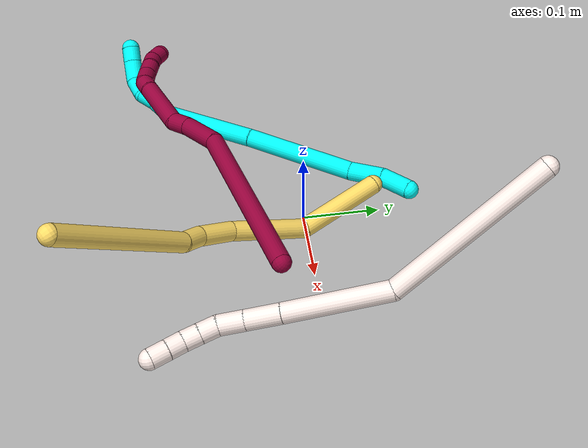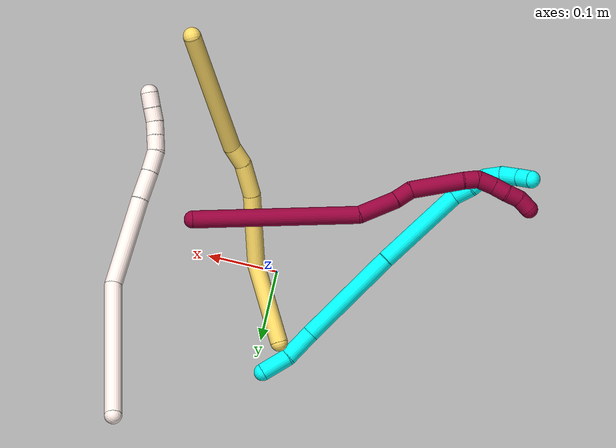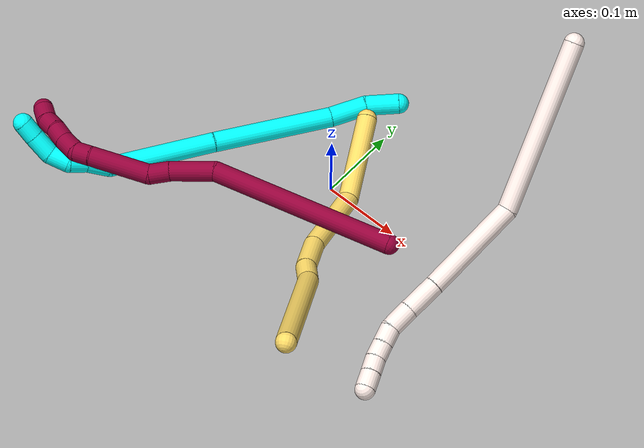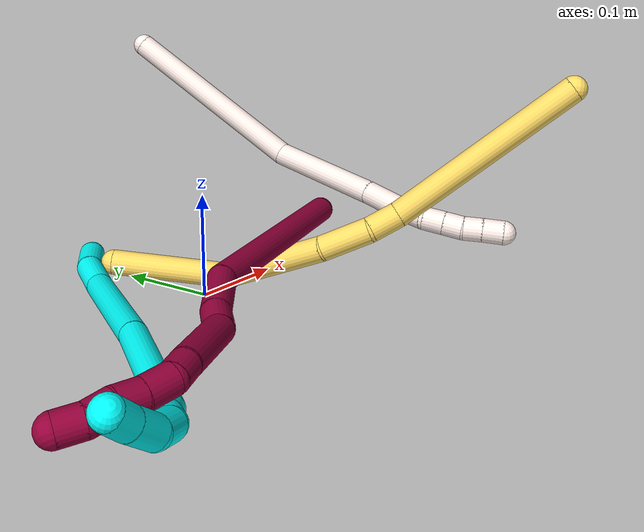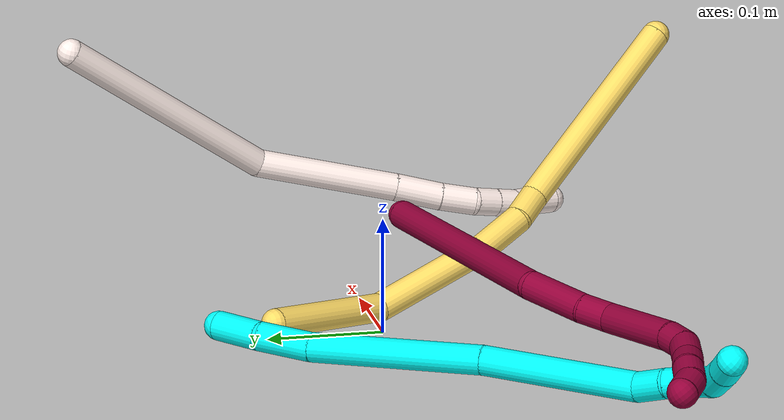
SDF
<sdf version="1.7">
 <world name="default">
  <model name="photoneo_s_sensor">
   <static>1</static>
   <pose>0 0 2 1.57079 1.57079 3.14159</pose>
   <link name="link">
    <inertial><mass>0.1</mass></inertial>
    <sensor name="sensor" type="depth">
     <update_rate>30</update_rate>
     <camera>
      <horizontal_fov>1.22</horizontal_fov>
      <image><width>1920</width><height>1200</height><format>B8G8R8</format></image>
      <clip><near>0.1</near><far>4</far></clip>
      <depth_camera><output>points</output></depth_camera>
     </camera>
     <plugin name="camera_plugin" filename="libgazebo_ros_depth_camera.so">
      <baseline>0.2</baseline>
      <alwaysOn>1</alwaysOn>
      <updateRate>0.0</updateRate>
      <cameraName>camera_ir</cameraName>
      <imageTopicName>/camera/color/image_raw</imageTopicName>
      <cameraInfoTopicName>/camera/color/camera_info</cameraInfoTopicName>
      <depthImageTopicName>/camera/depth/image_raw</depthImageTopicName>
      <depthImageCameraInfoTopicName>/camera/depth/camera_info</depthImageCameraInfoTopicName>
      <pointCloudTopicName>/camera/depth/points</pointCloudTopicName>
      <frameName>fr_optical</frameName>
      <pointCloudCutoff>0.1</pointCloudCutoff>
      <pointCloudCutoffMax>2.0</pointCloudCutoffMax>
      <distortionK1>0</distortionK1>
      <distortionK2>0</distortionK2>
      <distortionK3>0</distortionK3>
      <distortionT1>0</distortionT1>
      <distortionT2>0</distortionT2>
      <CxPrime>0</CxPrime>
      <Cx>0</Cx>
      <Cy>0</Cy>
      <focalLength>0</focalLength>
      <hackBaseline>0</hackBaseline>
     </plugin>
    </sensor>
   </link>
  </model>
  <model name="bin">
   <static>1</static>
   <link name="bottom">
    <collision name="collision-bottom">
     <pose>0 0 -0.01 0 -0 0</pose>
     <geometry><box><size>0.8 0.6 0.02</size></box></geometry>
     <surface>
      <friction><ode><mu>100</mu><mu2>100</mu2></ode></friction>
      <contact><collide_bitmask>65535</collide_bitmask></contact>
     </surface>
    </collision>
   </link>
   <link name="west_wall">
    <collision name="collision-west_wall">
     <pose>-0.41 0 0.1 0 -0 0</pose>
     <geometry><box><size>0.02 0.6 0.2</size></box></geometry>
     <surface>
      <friction><ode><mu>100</mu><mu2>100</mu2></ode></friction>
      <contact><collide_bitmask>65535</collide_bitmask></contact>
     </surface>
    </collision>
   </link>
   <link name="east_wall">
    <collision name="collision-east_wall">
     <pose>0.41 0 0.1 0 -0 0</pose>
     <geometry><box><size>0.02 0.6 0.2</size></box></geometry>
     <surface>
      <friction><ode><mu>100</mu><mu2>100</mu2></ode></friction>
      <contact><collide_bitmask>65535</collide_bitmask></contact>
     </surface>
    </collision>
   </link>
   <link name="south_wall">
    <collision name="collision-south_wall">
     <pose>0 -0.31 0.1 0 -0 0</pose>
     <geometry><box><size>0.8 0.02 0.2</size></box></geometry>
     <surface>
      <friction><ode><mu>100</mu><mu2>100</mu2></ode></friction>
      <contact><collide_bitmask>65535</collide_bitmask></contact>
     </surface>
    </collision>
   </link>
   <link name="north_wall">
    <collision name="collision-north_wall">
     <pose>0 0.31 0.1 0 -0 0</pose>
     <geometry><box><size>0.8 0.02 0.2</size></box></geometry>
     <surface>
      <friction><ode><mu>100</mu><mu2>100</mu2></ode></friction>
      <contact><collide_bitmask>65535</collide_bitmask></contact>
     </surface>
    </collision>
   </link>
  </model>
  <model name="3">
   <static>0</static>
   <link name="3">
    <collision name="collision-cylinder-e_1_1_4">
     <pose>-0.005639 -0.015014 -0.013395 2.29924 -0.27324 -0.595512</pose>
     <geometry><cylinder><radius>0.0125</radius><length>0.041792</length></cylinder></geometry>
     <surface>
      <friction><ode><mu>1.16</mu><mu2>1.16</mu2><slip1>0</slip1><slip2>0</slip2></ode></friction>
      <contact><ode><kp>1e+06</kp><kd>1</kd><max_vel>0</max_vel><min_depth>0.001</min_depth></ode></contact>
     </surface>
    </collision>
    <visual name="visual-cylinder-e_1_1_4">
     <pose>-0.005639 -0.015014 -0.013395 2.29924 -0.27324 -0.595512</pose>
     <geometry><cylinder><radius>0.0125</radius><length>0.041792</length></cylinder></geometry>
     <material><ambient>0.003922 1 0.996078 1</ambient></material>
    </visual>
    <collision name="collision-cylinder-e_2_4_5">
     <pose>-0.023193 -0.043996 -0.040884 2.36076 -0.540788 -1.18546</pose>
     <geometry><cylinder><radius>0.0125</radius><length>0.046291</length></cylinder></geometry>
     <surface>
      <friction><ode><mu>1.16</mu><mu2>1.16</mu2><slip1>0</slip1><slip2>0</slip2></ode></friction>
      <contact><ode><kp>1e+06</kp><kd>1</kd><max_vel>0</max_vel><min_depth>0.001</min_depth></ode></contact>
     </surface>
    </collision>
    <visual name="visual-cylinder-e_2_4_5">
     <pose>-0.023193 -0.043996 -0.040884 2.36076 -0.540788 -1.18546</pose>
     <geometry><cylinder><radius>0.0125</radius><length>0.046291</length></cylinder></geometry>
     <material><ambient>0.003922 1 0.996078 1</ambient></material>
    </visual>
    <collision name="collision-cylinder-e_3_5_6">
     <pose>-0.067783 -0.099012 -0.10911 2.49278 -0.448299 -1.19152</pose>
     <geometry><cylinder><radius>0.0125</radius><length>0.150769</length></cylinder></geometry>
     <surface>
      <friction><ode><mu>1.16</mu><mu2>1.16</mu2><slip1>0</slip1><slip2>0</slip2></ode></friction>
      <contact><ode><kp>1e+06</kp><kd>1</kd><max_vel>0</max_vel><min_depth>0.001</min_depth></ode></contact>
     </surface>
    </collision>
    <visual name="visual-cylinder-e_3_5_6">
     <pose>-0.067783 -0.099012 -0.10911 2.49278 -0.448299 -1.19152</pose>
     <geometry><cylinder><radius>0.0125</radius><length>0.150769</length></cylinder></geometry>
     <material><ambient>0.003922 1 0.996078 1</ambient></material>
    </visual>
    <collision name="collision-cylinder-e_4_6_7">
     <pose>-0.129838 -0.180692 -0.206826 2.39127 -0.458098 -1.06904</pose>
     <geometry><cylinder><radius>0.0125</radius><length>0.132872</length></cylinder></geometry>
     <surface>
      <friction><ode><mu>1.16</mu><mu2>1.16</mu2><slip1>0</slip1><slip2>0</slip2></ode></friction>
      <contact><ode><kp>1e+06</kp><kd>1</kd><max_vel>0</max_vel><min_depth>0.001</min_depth></ode></contact>
     </surface>
    </collision>
    <visual name="visual-cylinder-e_4_6_7">
     <pose>-0.129838 -0.180692 -0.206826 2.39127 -0.458098 -1.06904</pose>
     <geometry><cylinder><radius>0.0125</radius><length>0.132872</length></cylinder></geometry>
     <material><ambient>0.003922 1 0.996078 1</ambient></material>
    </visual>
    <collision name="collision-cylinder-e_5_7_8">
     <pose>-0.159966 -0.228877 -0.262617 2.58733 -0.052003 -0.182352</pose>
     <geometry><cylinder><radius>0.0125</radius><length>0.028747</length></cylinder></geometry>
     <surface>
      <friction><ode><mu>1.16</mu><mu2>1.16</mu2><slip1>0</slip1><slip2>0</slip2></ode></friction>
      <contact><ode><kp>1e+06</kp><kd>1</kd><max_vel>0</max_vel><min_depth>0.001</min_depth></ode></contact>
     </surface>
    </collision>
    <visual name="visual-cylinder-e_5_7_8">
     <pose>-0.159966 -0.228877 -0.262617 2.58733 -0.052003 -0.182352</pose>
     <geometry><cylinder><radius>0.0125</radius><length>0.028747</length></cylinder></geometry>
     <material><ambient>0.003922 1 0.996078 1</ambient></material>
    </visual>
    <collision name="collision-cylinder-e_6_8_9">
     <pose>-0.163789 -0.242204 -0.284397 2.59909 -0.268443 -0.90403</pose>
     <geometry><cylinder><radius>0.0125</radius><length>0.02319</length></cylinder></geometry>
     <surface>
      <friction><ode><mu>1.16</mu><mu2>1.16</mu2><slip1>0</slip1><slip2>0</slip2></ode></friction>
      <contact><ode><kp>1e+06</kp><kd>1</kd><max_vel>0</max_vel><min_depth>0.001</min_depth></ode></contact>
     </surface>
    </collision>
    <visual name="visual-cylinder-e_6_8_9">
     <pose>-0.163789 -0.242204 -0.284397 2.59909 -0.268443 -0.90403</pose>
     <geometry><cylinder><radius>0.0125</radius><length>0.02319</length></cylinder></geometry>
     <material><ambient>0.003922 1 0.996078 1</ambient></material>
    </visual>
    <collision name="collision-cylinder-e_7_9_10">
     <pose>-0.16419 -0.256514 -0.303298 2.40034 0.208361 0.525702</pose>
     <geometry><cylinder><radius>0.0125</radius><length>0.025849</length></cylinder></geometry>
     <surface>
      <friction><ode><mu>1.16</mu><mu2>1.16</mu2><slip1>0</slip1><slip2>0</slip2></ode></friction>
      <contact><ode><kp>1e+06</kp><kd>1</kd><max_vel>0</max_vel><min_depth>0.001</min_depth></ode></contact>
     </surface>
    </collision>
    <visual name="visual-cylinder-e_7_9_10">
     <pose>-0.16419 -0.256514 -0.303298 2.40034 0.208361 0.525702</pose>
     <geometry><cylinder><radius>0.0125</radius><length>0.025849</length></cylinder></geometry>
     <material><ambient>0.003922 1 0.996078 1</ambient></material>
    </visual>
    <collision name="collision-cylinder-e_8_10_11">
     <pose>-0.153577 -0.270517 -0.323556 2.67797 0.576177 1.79628</pose>
     <geometry><cylinder><radius>0.0125</radius><length>0.029146</length></cylinder></geometry>
     <surface>
      <friction><ode><mu>1.16</mu><mu2>1.16</mu2><slip1>0</slip1><slip2>0</slip2></ode></friction>
      <contact><ode><kp>1e+06</kp><kd>1</kd><max_vel>0</max_vel><min_depth>0.001</min_depth></ode></contact>
     </surface>
    </collision>
    <visual name="visual-cylinder-e_8_10_11">
     <pose>-0.153577 -0.270517 -0.323556 2.67797 0.576177 1.79628</pose>
     <geometry><cylinder><radius>0.0125</radius><length>0.029146</length></cylinder></geometry>
     <material><ambient>0.003922 1 0.996078 1</ambient></material>
    </visual>
    <collision name="collision-cylinder-e_9_11_2">
     <pose>-0.139554 -0.279168 -0.342655 2.76973 0.606549 2.05912</pose>
     <geometry><cylinder><radius>0.0125</radius><length>0.021343</length></cylinder></geometry>
     <surface>
      <friction><ode><mu>1.16</mu><mu2>1.16</mu2><slip1>0</slip1><slip2>0</slip2></ode></friction>
      <contact><ode><kp>1e+06</kp><kd>1</kd><max_vel>0</max_vel><min_depth>0.001</min_depth></ode></contact>
     </surface>
    </collision>
    <visual name="visual-cylinder-e_9_11_2">
     <pose>-0.139554 -0.279168 -0.342655 2.76973 0.606549 2.05912</pose>
     <geometry><cylinder><radius>0.0125</radius><length>0.021343</length></cylinder></geometry>
     <material><ambient>0.003922 1 0.996078 1</ambient></material>
    </visual>
    <collision name="collision-sphere-2">
     <pose>-0.133471 -0.282353 -0.350823 0 -0 0</pose>
     <geometry><sphere><radius>0.0125</radius></sphere></geometry>
     <surface>
      <friction><ode><mu>1.16</mu><mu2>1.16</mu2><slip1>0</slip1><slip2>0</slip2></ode></friction>
      <contact><ode><kp>1e+06</kp><kd>1</kd><max_vel>0</max_vel><min_depth>0.001</min_depth></ode></contact>
     </surface>
    </collision>
    <visual name="visual-sphere-2">
     <pose>-0.133471 -0.282353 -0.350823 0 -0 0</pose>
     <geometry><sphere><radius>0.0125</radius></sphere></geometry>
     <material><ambient>0.003922 1 0.996078 1</ambient></material>
    </visual>
    <collision name="collision-sphere-11">
     <pose>-0.145638 -0.275982 -0.334486 0 -0 0</pose>
     <geometry><sphere><radius>0.0125</radius></sphere></geometry>
     <surface>
      <friction><ode><mu>1.16</mu><mu2>1.16</mu2><slip1>0</slip1><slip2>0</slip2></ode></friction>
      <contact><ode><kp>1e+06</kp><kd>1</kd><max_vel>0</max_vel><min_depth>0.001</min_depth></ode></contact>
     </surface>
    </collision>
    <visual name="visual-sphere-11">
     <pose>-0.145638 -0.275982 -0.334486 0 -0 0</pose>
     <geometry><sphere><radius>0.0125</radius></sphere></geometry>
     <material><ambient>0.003922 1 0.996078 1</ambient></material>
    </visual>
    <collision name="collision-sphere-10">
     <pose>-0.161517 -0.265052 -0.312626 0 -0 0</pose>
     <geometry><sphere><radius>0.0125</radius></sphere></geometry>
     <surface>
      <friction><ode><mu>1.16</mu><mu2>1.16</mu2><slip1>0</slip1><slip2>0</slip2></ode></friction>
      <contact><ode><kp>1e+06</kp><kd>1</kd><max_vel>0</max_vel><min_depth>0.001</min_depth></ode></contact>
     </surface>
    </collision>
    <visual name="visual-sphere-10">
     <pose>-0.161517 -0.265052 -0.312626 0 -0 0</pose>
     <geometry><sphere><radius>0.0125</radius></sphere></geometry>
     <material><ambient>0.003922 1 0.996078 1</ambient></material>
    </visual>
    <collision name="collision-sphere-9">
     <pose>-0.166864 -0.247976 -0.293971 0 -0 0</pose>
     <geometry><sphere><radius>0.0125</radius></sphere></geometry>
     <surface>
      <friction><ode><mu>1.16</mu><mu2>1.16</mu2><slip1>0</slip1><slip2>0</slip2></ode></friction>
      <contact><ode><kp>1e+06</kp><kd>1</kd><max_vel>0</max_vel><min_depth>0.001</min_depth></ode></contact>
     </surface>
    </collision>
    <visual name="visual-sphere-9">
     <pose>-0.166864 -0.247976 -0.293971 0 -0 0</pose>
     <geometry><sphere><radius>0.0125</radius></sphere></geometry>
     <material><ambient>0.003922 1 0.996078 1</ambient></material>
    </visual>
    <collision name="collision-sphere-4">
     <pose>-0.011278 -0.030029 -0.026789 0 -0 0</pose>
     <geometry><sphere><radius>0.0125</radius></sphere></geometry>
     <surface>
      <friction><ode><mu>1.16</mu><mu2>1.16</mu2><slip1>0</slip1><slip2>0</slip2></ode></friction>
      <contact><ode><kp>1e+06</kp><kd>1</kd><max_vel>0</max_vel><min_depth>0.001</min_depth></ode></contact>
     </surface>
    </collision>
    <visual name="visual-sphere-4">
     <pose>-0.011278 -0.030029 -0.026789 0 -0 0</pose>
     <geometry><sphere><radius>0.0125</radius></sphere></geometry>
     <material><ambient>0.003922 1 0.996078 1</ambient></material>
    </visual>
    <collision name="collision-sphere-1">
     <geometry><sphere><radius>0.0125</radius></sphere></geometry>
     <surface>
      <friction><ode><mu>1.16</mu><mu2>1.16</mu2><slip1>0</slip1><slip2>0</slip2></ode></friction>
      <contact><ode><kp>1e+06</kp><kd>1</kd><max_vel>0</max_vel><min_depth>0.001</min_depth></ode></contact>
     </surface>
    </collision>
    <visual name="visual-sphere-1">
     <geometry><sphere><radius>0.0125</radius></sphere></geometry>
     <material><ambient>0.003922 1 0.996078 1</ambient></material>
    </visual>
    <collision name="collision-sphere-8">
     <pose>-0.160713 -0.236432 -0.274822 0 -0 0</pose>
     <geometry><sphere><radius>0.0125</radius></sphere></geometry>
     <surface>
      <friction><ode><mu>1.16</mu><mu2>1.16</mu2><slip1>0</slip1><slip2>0</slip2></ode></friction>
      <contact><ode><kp>1e+06</kp><kd>1</kd><max_vel>0</max_vel><min_depth>0.001</min_depth></ode></contact>
     </surface>
    </collision>
    <visual name="visual-sphere-8">
     <pose>-0.160713 -0.236432 -0.274822 0 -0 0</pose>
     <geometry><sphere><radius>0.0125</radius></sphere></geometry>
     <material><ambient>0.003922 1 0.996078 1</ambient></material>
    </visual>
    <collision name="collision-sphere-5">
     <pose>-0.035109 -0.057962 -0.054979 0 -0 0</pose>
     <geometry><sphere><radius>0.0125</radius></sphere></geometry>
     <surface>
      <friction><ode><mu>1.16</mu><mu2>1.16</mu2><slip1>0</slip1><slip2>0</slip2></ode></friction>
      <contact><ode><kp>1e+06</kp><kd>1</kd><max_vel>0</max_vel><min_depth>0.001</min_depth></ode></contact>
     </surface>
    </collision>
    <visual name="visual-sphere-5">
     <pose>-0.035109 -0.057962 -0.054979 0 -0 0</pose>
     <geometry><sphere><radius>0.0125</radius></sphere></geometry>
     <material><ambient>0.003922 1 0.996078 1</ambient></material>
    </visual>
    <collision name="collision-sphere-6">
     <pose>-0.100457 -0.140062 -0.163241 0 -0 0</pose>
     <geometry><sphere><radius>0.0125</radius></sphere></geometry>
     <surface>
      <friction><ode><mu>1.16</mu><mu2>1.16</mu2><slip1>0</slip1><slip2>0</slip2></ode></friction>
      <contact><ode><kp>1e+06</kp><kd>1</kd><max_vel>0</max_vel><min_depth>0.001</min_depth></ode></contact>
     </surface>
    </collision>
    <visual name="visual-sphere-6">
     <pose>-0.100457 -0.140062 -0.163241 0 -0 0</pose>
     <geometry><sphere><radius>0.0125</radius></sphere></geometry>
     <material><ambient>0.003922 1 0.996078 1</ambient></material>
    </visual>
    <collision name="collision-sphere-7">
     <pose>-0.159219 -0.221322 -0.250411 0 -0 0</pose>
     <geometry><sphere><radius>0.0125</radius></sphere></geometry>
     <surface>
      <friction><ode><mu>1.16</mu><mu2>1.16</mu2><slip1>0</slip1><slip2>0</slip2></ode></friction>
      <contact><ode><kp>1e+06</kp><kd>1</kd><max_vel>0</max_vel><min_depth>0.001</min_depth></ode></contact>
     </surface>
    </collision>
    <visual name="visual-sphere-7">
     <pose>-0.159219 -0.221322 -0.250411 0 -0 0</pose>
     <geometry><sphere><radius>0.0125</radius></sphere></geometry>
     <material><ambient>0.003922 1 0.996078 1</ambient></material>
    </visual>
    <inertial>
     <pose>-0.097753 -0.148541 -0.170225 0 -0 0</pose>
     <mass>0.5</mass>
     <inertia>
      <ixx>-0.000223</ixx>
      <ixy>0</ixy>
      <ixz>0</ixz>
      <iyy>-0.000471</iyy>
      <iyz>0</iyz>
      <izz>0.000491</izz>
     </inertia>
    </inertial>
   </link>
   <pose>-0.012777 0.1433 0.019303 2.49547 -0.435866 2.05597</pose>
  </model>
  <model name="5">
   <static>0</static>
   <link name="5">
    <collision name="collision-cylinder-e_1_1_4">
     <pose>-0.001497 -0.002715 0.057844 0.04691 -0.025854 -0.000607</pose>
     <geometry><cylinder><radius>0.0125</radius><length>0.115854</length></cylinder></geometry>
     <surface>
      <friction><ode><mu>1.16</mu><mu2>1.16</mu2><slip1>0</slip1><slip2>0</slip2></ode></friction>
      <contact><ode><kp>1e+06</kp><kd>1</kd><max_vel>0</max_vel><min_depth>0.001</min_depth></ode></contact>
     </surface>
    </collision>
    <visual name="visual-cylinder-e_1_1_4">
     <pose>-0.001497 -0.002715 0.057844 0.04691 -0.025854 -0.000607</pose>
     <geometry><cylinder><radius>0.0125</radius><length>0.115854</length></cylinder></geometry>
     <material><ambient>1 0.858824 0.4 1</ambient></material>
    </visual>
    <collision name="collision-cylinder-e_2_4_5">
     <pose>-0.000279 -0.032917 0.161 0.545257 0.051204 0.014319</pose>
     <geometry><cylinder><radius>0.0125</radius><length>0.106134</length></cylinder></geometry>
     <surface>
      <friction><ode><mu>1.16</mu><mu2>1.16</mu2><slip1>0</slip1><slip2>0</slip2></ode></friction>
      <contact><ode><kp>1e+06</kp><kd>1</kd><max_vel>0</max_vel><min_depth>0.001</min_depth></ode></contact>
     </surface>
    </collision>
    <visual name="visual-cylinder-e_2_4_5">
     <pose>-0.000279 -0.032917 0.161 0.545257 0.051204 0.014319</pose>
     <geometry><cylinder><radius>0.0125</radius><length>0.106134</length></cylinder></geometry>
     <material><ambient>1 0.858824 0.4 1</ambient></material>
    </visual>
    <collision name="collision-cylinder-e_3_5_6">
     <pose>-0.001524 -0.072688 0.227249 0.530608 -0.161783 -0.044047</pose>
     <geometry><cylinder><radius>0.0125</radius><length>0.04919</length></cylinder></geometry>
     <surface>
      <friction><ode><mu>1.16</mu><mu2>1.16</mu2><slip1>0</slip1><slip2>0</slip2></ode></friction>
      <contact><ode><kp>1e+06</kp><kd>1</kd><max_vel>0</max_vel><min_depth>0.001</min_depth></ode></contact>
     </surface>
    </collision>
    <visual name="visual-cylinder-e_3_5_6">
     <pose>-0.001524 -0.072688 0.227249 0.530608 -0.161783 -0.044047</pose>
     <geometry><cylinder><radius>0.0125</radius><length>0.04919</length></cylinder></geometry>
     <material><ambient>1 0.858824 0.4 1</ambient></material>
    </visual>
    <collision name="collision-cylinder-e_4_6_7">
     <pose>-0.012054 -0.091844 0.26023 0.518486 -0.442344 -0.119125</pose>
     <geometry><cylinder><radius>0.0125</radius><length>0.030688</length></cylinder></geometry>
     <surface>
      <friction><ode><mu>1.16</mu><mu2>1.16</mu2><slip1>0</slip1><slip2>0</slip2></ode></friction>
      <contact><ode><kp>1e+06</kp><kd>1</kd><max_vel>0</max_vel><min_depth>0.001</min_depth></ode></contact>
     </surface>
    </collision>
    <visual name="visual-cylinder-e_4_6_7">
     <pose>-0.012054 -0.091844 0.26023 0.518486 -0.442344 -0.119125</pose>
     <geometry><cylinder><radius>0.0125</radius><length>0.030688</length></cylinder></geometry>
     <material><ambient>1 0.858824 0.4 1</ambient></material>
    </visual>
    <collision name="collision-cylinder-e_5_7_2">
     <pose>-0.044348 -0.164646 0.341598 0.760313 -0.262686 -0.105478</pose>
     <geometry><cylinder><radius>0.0125</radius><length>0.198134</length></cylinder></geometry>
     <surface>
      <friction><ode><mu>1.16</mu><mu2>1.16</mu2><slip1>0</slip1><slip2>0</slip2></ode></friction>
      <contact><ode><kp>1e+06</kp><kd>1</kd><max_vel>0</max_vel><min_depth>0.001</min_depth></ode></contact>
     </surface>
    </collision>
    <visual name="visual-cylinder-e_5_7_2">
     <pose>-0.044348 -0.164646 0.341598 0.760313 -0.262686 -0.105478</pose>
     <geometry><cylinder><radius>0.0125</radius><length>0.198134</length></cylinder></geometry>
     <material><ambient>1 0.858824 0.4 1</ambient></material>
    </visual>
    <collision name="collision-sphere-2">
     <pose>-0.070073 -0.230576 0.410921 0 -0 0</pose>
     <geometry><sphere><radius>0.0125</radius></sphere></geometry>
     <surface>
      <friction><ode><mu>1.16</mu><mu2>1.16</mu2><slip1>0</slip1><slip2>0</slip2></ode></friction>
      <contact><ode><kp>1e+06</kp><kd>1</kd><max_vel>0</max_vel><min_depth>0.001</min_depth></ode></contact>
     </surface>
    </collision>
    <visual name="visual-sphere-2">
     <pose>-0.070073 -0.230576 0.410921 0 -0 0</pose>
     <geometry><sphere><radius>0.0125</radius></sphere></geometry>
     <material><ambient>1 0.858824 0.4 1</ambient></material>
    </visual>
    <collision name="collision-sphere-7">
     <pose>-0.018623 -0.098716 0.272274 0 -0 0</pose>
     <geometry><sphere><radius>0.0125</radius></sphere></geometry>
     <surface>
      <friction><ode><mu>1.16</mu><mu2>1.16</mu2><slip1>0</slip1><slip2>0</slip2></ode></friction>
      <contact><ode><kp>1e+06</kp><kd>1</kd><max_vel>0</max_vel><min_depth>0.001</min_depth></ode></contact>
     </surface>
    </collision>
    <visual name="visual-sphere-7">
     <pose>-0.018623 -0.098716 0.272274 0 -0 0</pose>
     <geometry><sphere><radius>0.0125</radius></sphere></geometry>
     <material><ambient>1 0.858824 0.4 1</ambient></material>
    </visual>
    <collision name="collision-sphere-6">
     <pose>-0.005486 -0.084972 0.248185 0 -0 0</pose>
     <geometry><sphere><radius>0.0125</radius></sphere></geometry>
     <surface>
      <friction><ode><mu>1.16</mu><mu2>1.16</mu2><slip1>0</slip1><slip2>0</slip2></ode></friction>
      <contact><ode><kp>1e+06</kp><kd>1</kd><max_vel>0</max_vel><min_depth>0.001</min_depth></ode></contact>
     </surface>
    </collision>
    <visual name="visual-sphere-6">
     <pose>-0.005486 -0.084972 0.248185 0 -0 0</pose>
     <geometry><sphere><radius>0.0125</radius></sphere></geometry>
     <material><ambient>1 0.858824 0.4 1</ambient></material>
    </visual>
    <collision name="collision-sphere-5">
     <pose>0.002437 -0.060404 0.206313 0 -0 0</pose>
     <geometry><sphere><radius>0.0125</radius></sphere></geometry>
     <surface>
      <friction><ode><mu>1.16</mu><mu2>1.16</mu2><slip1>0</slip1><slip2>0</slip2></ode></friction>
      <contact><ode><kp>1e+06</kp><kd>1</kd><max_vel>0</max_vel><min_depth>0.001</min_depth></ode></contact>
     </surface>
    </collision>
    <visual name="visual-sphere-5">
     <pose>0.002437 -0.060404 0.206313 0 -0 0</pose>
     <geometry><sphere><radius>0.0125</radius></sphere></geometry>
     <material><ambient>1 0.858824 0.4 1</ambient></material>
    </visual>
    <collision name="collision-sphere-1">
     <geometry><sphere><radius>0.0125</radius></sphere></geometry>
     <surface>
      <friction><ode><mu>1.16</mu><mu2>1.16</mu2><slip1>0</slip1><slip2>0</slip2></ode></friction>
      <contact><ode><kp>1e+06</kp><kd>1</kd><max_vel>0</max_vel><min_depth>0.001</min_depth></ode></contact>
     </surface>
    </collision>
    <visual name="visual-sphere-1">
     <geometry><sphere><radius>0.0125</radius></sphere></geometry>
     <material><ambient>1 0.858824 0.4 1</ambient></material>
    </visual>
    <collision name="collision-sphere-4">
     <pose>-0.002995 -0.005431 0.115687 0 -0 0</pose>
     <geometry><sphere><radius>0.0125</radius></sphere></geometry>
     <surface>
      <friction><ode><mu>1.16</mu><mu2>1.16</mu2><slip1>0</slip1><slip2>0</slip2></ode></friction>
      <contact><ode><kp>1e+06</kp><kd>1</kd><max_vel>0</max_vel><min_depth>0.001</min_depth></ode></contact>
     </surface>
    </collision>
    <visual name="visual-sphere-4">
     <pose>-0.002995 -0.005431 0.115687 0 -0 0</pose>
     <geometry><sphere><radius>0.0125</radius></sphere></geometry>
     <material><ambient>1 0.858824 0.4 1</ambient></material>
    </visual>
    <inertial>
     <pose>-0.01887 -0.085649 0.221271 0 -0 0</pose>
     <mass>0.5</mass>
     <inertia>
      <ixx>0.000811</ixx>
      <ixy>0</ixy>
      <ixz>0</ixz>
      <iyy>0.000637</iyy>
      <iyz>0</iyz>
      <izz>0.000708</izz>
     </inertia>
    </inertial>
   </link>
   <pose>-0.025899 0.097054 0.022471 -1.71563 0.301279 -2.68114</pose>
  </model>
  <model name="8">
   <static>0</static>
   <link name="8">
    <collision name="collision-cylinder-e_1_1_4">
     <pose>-0.102259 -0.03108 -0.048724 2.57379 -1.05639 -2.2142</pose>
     <geometry><cylinder><radius>0.0125</radius><length>0.234921</length></cylinder></geometry>
     <surface>
      <friction><ode><mu>1.16</mu><mu2>1.16</mu2><slip1>0</slip1><slip2>0</slip2></ode></friction>
      <contact><ode><kp>1e+06</kp><kd>1</kd><max_vel>0</max_vel><min_depth>0.001</min_depth></ode></contact>
     </surface>
    </collision>
    <visual name="visual-cylinder-e_1_1_4">
     <pose>-0.102259 -0.03108 -0.048724 2.57379 -1.05639 -2.2142</pose>
     <geometry><cylinder><radius>0.0125</radius><length>0.234921</length></cylinder></geometry>
     <material><ambient>0.584314 0 0.227451 1</ambient></material>
    </visual>
    <collision name="collision-cylinder-e_2_4_5">
     <pose>-0.221941 -0.07396 -0.116126 2.57814 -0.667758 -1.75085</pose>
     <geometry><cylinder><radius>0.0125</radius><length>0.056271</length></cylinder></geometry>
     <surface>
      <friction><ode><mu>1.16</mu><mu2>1.16</mu2><slip1>0</slip1><slip2>0</slip2></ode></friction>
      <contact><ode><kp>1e+06</kp><kd>1</kd><max_vel>0</max_vel><min_depth>0.001</min_depth></ode></contact>
     </surface>
    </collision>
    <visual name="visual-cylinder-e_2_4_5">
     <pose>-0.221941 -0.07396 -0.116126 2.57814 -0.667758 -1.75085</pose>
     <geometry><cylinder><radius>0.0125</radius><length>0.056271</length></cylinder></geometry>
     <material><ambient>0.584314 0 0.227451 1</ambient></material>
    </visual>
    <collision name="collision-cylinder-e_3_5_6">
     <pose>-0.245547 -0.092586 -0.14414 2.51032 -0.490977 -1.30888</pose>
     <geometry><cylinder><radius>0.0125</radius><length>0.026232</length></cylinder></geometry>
     <surface>
      <friction><ode><mu>1.16</mu><mu2>1.16</mu2><slip1>0</slip1><slip2>0</slip2></ode></friction>
      <contact><ode><kp>1e+06</kp><kd>1</kd><max_vel>0</max_vel><min_depth>0.001</min_depth></ode></contact>
     </surface>
    </collision>
    <visual name="visual-cylinder-e_3_5_6">
     <pose>-0.245547 -0.092586 -0.14414 2.51032 -0.490977 -1.30888</pose>
     <geometry><cylinder><radius>0.0125</radius><length>0.026232</length></cylinder></geometry>
     <material><ambient>0.584314 0 0.227451 1</ambient></material>
    </visual>
    <collision name="collision-cylinder-e_4_6_7">
     <pose>-0.282246 -0.114839 -0.169899 2.38741 -0.934785 -1.81087</pose>
     <geometry><cylinder><radius>0.0125</radius><length>0.075863</length></cylinder></geometry>
     <surface>
      <friction><ode><mu>1.16</mu><mu2>1.16</mu2><slip1>0</slip1><slip2>0</slip2></ode></friction>
      <contact><ode><kp>1e+06</kp><kd>1</kd><max_vel>0</max_vel><min_depth>0.001</min_depth></ode></contact>
     </surface>
    </collision>
    <visual name="visual-cylinder-e_4_6_7">
     <pose>-0.282246 -0.114839 -0.169899 2.38741 -0.934785 -1.81087</pose>
     <geometry><cylinder><radius>0.0125</radius><length>0.075863</length></cylinder></geometry>
     <material><ambient>0.584314 0 0.227451 1</ambient></material>
    </visual>
    <collision name="collision-cylinder-e_5_7_8">
     <pose>-0.321108 -0.132974 -0.191515 2.66094 -0.958838 -2.2606</pose>
     <geometry><cylinder><radius>0.0125</radius><length>0.020396</length></cylinder></geometry>
     <surface>
      <friction><ode><mu>1.16</mu><mu2>1.16</mu2><slip1>0</slip1><slip2>0</slip2></ode></friction>
      <contact><ode><kp>1e+06</kp><kd>1</kd><max_vel>0</max_vel><min_depth>0.001</min_depth></ode></contact>
     </surface>
    </collision>
    <visual name="visual-cylinder-e_5_7_8">
     <pose>-0.321108 -0.132974 -0.191515 2.66094 -0.958838 -2.2606</pose>
     <geometry><cylinder><radius>0.0125</radius><length>0.020396</length></cylinder></geometry>
     <material><ambient>0.584314 0 0.227451 1</ambient></material>
    </visual>
    <collision name="collision-cylinder-e_6_8_9">
     <pose>-0.341045 -0.133705 -0.200188 -2.6246 -1.23834 2.43104</pose>
     <geometry><cylinder><radius>0.0125</radius><length>0.024522</length></cylinder></geometry>
     <surface>
      <friction><ode><mu>1.16</mu><mu2>1.16</mu2><slip1>0</slip1><slip2>0</slip2></ode></friction>
      <contact><ode><kp>1e+06</kp><kd>1</kd><max_vel>0</max_vel><min_depth>0.001</min_depth></ode></contact>
     </surface>
    </collision>
    <visual name="visual-cylinder-e_6_8_9">
     <pose>-0.341045 -0.133705 -0.200188 -2.6246 -1.23834 2.43104</pose>
     <geometry><cylinder><radius>0.0125</radius><length>0.024522</length></cylinder></geometry>
     <material><ambient>0.584314 0 0.227451 1</ambient></material>
    </visual>
    <collision name="collision-cylinder-e_7_9_10">
     <pose>-0.362944 -0.130045 -0.20501 -2.24484 -1.36493 2.07273</pose>
     <geometry><cylinder><radius>0.0125</radius><length>0.021064</length></cylinder></geometry>
     <surface>
      <friction><ode><mu>1.16</mu><mu2>1.16</mu2><slip1>0</slip1><slip2>0</slip2></ode></friction>
      <contact><ode><kp>1e+06</kp><kd>1</kd><max_vel>0</max_vel><min_depth>0.001</min_depth></ode></contact>
     </surface>
    </collision>
    <visual name="visual-cylinder-e_7_9_10">
     <pose>-0.362944 -0.130045 -0.20501 -2.24484 -1.36493 2.07273</pose>
     <geometry><cylinder><radius>0.0125</radius><length>0.021064</length></cylinder></geometry>
     <material><ambient>0.584314 0 0.227451 1</ambient></material>
    </visual>
    <collision name="collision-cylinder-e_8_10_11">
     <pose>-0.38269 -0.126318 -0.209466 -2.56025 -1.19495 2.31318</pose>
     <geometry><cylinder><radius>0.0125</radius><length>0.02029</length></cylinder></geometry>
     <surface>
      <friction><ode><mu>1.16</mu><mu2>1.16</mu2><slip1>0</slip1><slip2>0</slip2></ode></friction>
      <contact><ode><kp>1e+06</kp><kd>1</kd><max_vel>0</max_vel><min_depth>0.001</min_depth></ode></contact>
     </surface>
    </collision>
    <visual name="visual-cylinder-e_8_10_11">
     <pose>-0.38269 -0.126318 -0.209466 -2.56025 -1.19495 2.31318</pose>
     <geometry><cylinder><radius>0.0125</radius><length>0.02029</length></cylinder></geometry>
     <material><ambient>0.584314 0 0.227451 1</ambient></material>
    </visual>
    <collision name="collision-cylinder-e_9_11_2">
     <pose>-0.401197 -0.119569 -0.212846 -1.6276 -1.09167 1.14275</pose>
     <geometry><cylinder><radius>0.0125</radius><length>0.020441</length></cylinder></geometry>
     <surface>
      <friction><ode><mu>1.16</mu><mu2>1.16</mu2><slip1>0</slip1><slip2>0</slip2></ode></friction>
      <contact><ode><kp>1e+06</kp><kd>1</kd><max_vel>0</max_vel><min_depth>0.001</min_depth></ode></contact>
     </surface>
    </collision>
    <visual name="visual-cylinder-e_9_11_2">
     <pose>-0.401197 -0.119569 -0.212846 -1.6276 -1.09167 1.14275</pose>
     <geometry><cylinder><radius>0.0125</radius><length>0.020441</length></cylinder></geometry>
     <material><ambient>0.584314 0 0.227451 1</ambient></material>
    </visual>
    <collision name="collision-sphere-2">
     <pose>-0.410267 -0.114865 -0.213113 0 -0 0</pose>
     <geometry><sphere><radius>0.0125</radius></sphere></geometry>
     <surface>
      <friction><ode><mu>1.16</mu><mu2>1.16</mu2><slip1>0</slip1><slip2>0</slip2></ode></friction>
      <contact><ode><kp>1e+06</kp><kd>1</kd><max_vel>0</max_vel><min_depth>0.001</min_depth></ode></contact>
     </surface>
    </collision>
    <visual name="visual-sphere-2">
     <pose>-0.410267 -0.114865 -0.213113 0 -0 0</pose>
     <geometry><sphere><radius>0.0125</radius></sphere></geometry>
     <material><ambient>0.584314 0 0.227451 1</ambient></material>
    </visual>
    <collision name="collision-sphere-11">
     <pose>-0.392127 -0.124273 -0.212578 0 -0 0</pose>
     <geometry><sphere><radius>0.0125</radius></sphere></geometry>
     <surface>
      <friction><ode><mu>1.16</mu><mu2>1.16</mu2><slip1>0</slip1><slip2>0</slip2></ode></friction>
      <contact><ode><kp>1e+06</kp><kd>1</kd><max_vel>0</max_vel><min_depth>0.001</min_depth></ode></contact>
     </surface>
    </collision>
    <visual name="visual-sphere-11">
     <pose>-0.392127 -0.124273 -0.212578 0 -0 0</pose>
     <geometry><sphere><radius>0.0125</radius></sphere></geometry>
     <material><ambient>0.584314 0 0.227451 1</ambient></material>
    </visual>
    <collision name="collision-sphere-10">
     <pose>-0.373253 -0.128363 -0.206354 0 -0 0</pose>
     <geometry><sphere><radius>0.0125</radius></sphere></geometry>
     <surface>
      <friction><ode><mu>1.16</mu><mu2>1.16</mu2><slip1>0</slip1><slip2>0</slip2></ode></friction>
      <contact><ode><kp>1e+06</kp><kd>1</kd><max_vel>0</max_vel><min_depth>0.001</min_depth></ode></contact>
     </surface>
    </collision>
    <visual name="visual-sphere-10">
     <pose>-0.373253 -0.128363 -0.206354 0 -0 0</pose>
     <geometry><sphere><radius>0.0125</radius></sphere></geometry>
     <material><ambient>0.584314 0 0.227451 1</ambient></material>
    </visual>
    <collision name="collision-sphere-9">
     <pose>-0.352634 -0.131727 -0.203667 0 -0 0</pose>
     <geometry><sphere><radius>0.0125</radius></sphere></geometry>
     <surface>
      <friction><ode><mu>1.16</mu><mu2>1.16</mu2><slip1>0</slip1><slip2>0</slip2></ode></friction>
      <contact><ode><kp>1e+06</kp><kd>1</kd><max_vel>0</max_vel><min_depth>0.001</min_depth></ode></contact>
     </surface>
    </collision>
    <visual name="visual-sphere-9">
     <pose>-0.352634 -0.131727 -0.203667 0 -0 0</pose>
     <geometry><sphere><radius>0.0125</radius></sphere></geometry>
     <material><ambient>0.584314 0 0.227451 1</ambient></material>
    </visual>
    <collision name="collision-sphere-4">
     <pose>-0.204518 -0.06216 -0.097448 0 -0 0</pose>
     <geometry><sphere><radius>0.0125</radius></sphere></geometry>
     <surface>
      <friction><ode><mu>1.16</mu><mu2>1.16</mu2><slip1>0</slip1><slip2>0</slip2></ode></friction>
      <contact><ode><kp>1e+06</kp><kd>1</kd><max_vel>0</max_vel><min_depth>0.001</min_depth></ode></contact>
     </surface>
    </collision>
    <visual name="visual-sphere-4">
     <pose>-0.204518 -0.06216 -0.097448 0 -0 0</pose>
     <geometry><sphere><radius>0.0125</radius></sphere></geometry>
     <material><ambient>0.584314 0 0.227451 1</ambient></material>
    </visual>
    <collision name="collision-sphere-1">
     <geometry><sphere><radius>0.0125</radius></sphere></geometry>
     <surface>
      <friction><ode><mu>1.16</mu><mu2>1.16</mu2><slip1>0</slip1><slip2>0</slip2></ode></friction>
      <contact><ode><kp>1e+06</kp><kd>1</kd><max_vel>0</max_vel><min_depth>0.001</min_depth></ode></contact>
     </surface>
    </collision>
    <visual name="visual-sphere-1">
     <geometry><sphere><radius>0.0125</radius></sphere></geometry>
     <material><ambient>0.584314 0 0.227451 1</ambient></material>
    </visual>
    <collision name="collision-sphere-8">
     <pose>-0.329455 -0.135683 -0.19671 0 -0 0</pose>
     <geometry><sphere><radius>0.0125</radius></sphere></geometry>
     <surface>
      <friction><ode><mu>1.16</mu><mu2>1.16</mu2><slip1>0</slip1><slip2>0</slip2></ode></friction>
      <contact><ode><kp>1e+06</kp><kd>1</kd><max_vel>0</max_vel><min_depth>0.001</min_depth></ode></contact>
     </surface>
    </collision>
    <visual name="visual-sphere-8">
     <pose>-0.329455 -0.135683 -0.19671 0 -0 0</pose>
     <geometry><sphere><radius>0.0125</radius></sphere></geometry>
     <material><ambient>0.584314 0 0.227451 1</ambient></material>
    </visual>
    <collision name="collision-sphere-5">
     <pose>-0.239363 -0.085759 -0.134803 0 -0 0</pose>
     <geometry><sphere><radius>0.0125</radius></sphere></geometry>
     <surface>
      <friction><ode><mu>1.16</mu><mu2>1.16</mu2><slip1>0</slip1><slip2>0</slip2></ode></friction>
      <contact><ode><kp>1e+06</kp><kd>1</kd><max_vel>0</max_vel><min_depth>0.001</min_depth></ode></contact>
     </surface>
    </collision>
    <visual name="visual-sphere-5">
     <pose>-0.239363 -0.085759 -0.134803 0 -0 0</pose>
     <geometry><sphere><radius>0.0125</radius></sphere></geometry>
     <material><ambient>0.584314 0 0.227451 1</ambient></material>
    </visual>
    <collision name="collision-sphere-6">
     <pose>-0.251731 -0.099412 -0.153478 0 -0 0</pose>
     <geometry><sphere><radius>0.0125</radius></sphere></geometry>
     <surface>
      <friction><ode><mu>1.16</mu><mu2>1.16</mu2><slip1>0</slip1><slip2>0</slip2></ode></friction>
      <contact><ode><kp>1e+06</kp><kd>1</kd><max_vel>0</max_vel><min_depth>0.001</min_depth></ode></contact>
     </surface>
    </collision>
    <visual name="visual-sphere-6">
     <pose>-0.251731 -0.099412 -0.153478 0 -0 0</pose>
     <geometry><sphere><radius>0.0125</radius></sphere></geometry>
     <material><ambient>0.584314 0 0.227451 1</ambient></material>
    </visual>
    <collision name="collision-sphere-7">
     <pose>-0.312761 -0.130266 -0.18632 0 -0 0</pose>
     <geometry><sphere><radius>0.0125</radius></sphere></geometry>
     <surface>
      <friction><ode><mu>1.16</mu><mu2>1.16</mu2><slip1>0</slip1><slip2>0</slip2></ode></friction>
      <contact><ode><kp>1e+06</kp><kd>1</kd><max_vel>0</max_vel><min_depth>0.001</min_depth></ode></contact>
     </surface>
    </collision>
    <visual name="visual-sphere-7">
     <pose>-0.312761 -0.130266 -0.18632 0 -0 0</pose>
     <geometry><sphere><radius>0.0125</radius></sphere></geometry>
     <material><ambient>0.584314 0 0.227451 1</ambient></material>
    </visual>
    <inertial>
     <pose>-0.205776 -0.072682 -0.112771 0 -0 0</pose>
     <mass>0.5</mass>
     <inertia>
      <ixx>-0.000828</ixx>
      <ixy>0</ixy>
      <ixz>0</ixz>
      <iyy>0.000528</iyy>
      <iyz>0</iyz>
      <izz>0.001294</izz>
     </inertia>
    </inertial>
   </link>
   <pose>0.13169 -0.045546 0.064982 -0.670455 0.175664 -0.228129</pose>
  </model>
  <model name="11">
   <static>0</static>
   <link name="11">
    <collision name="collision-cylinder-e_1_1_4">
     <pose>0.002099 -0.095725 -0.048005 2.03563 0.019601 0.031755</pose>
     <geometry><cylinder><radius>0.0125</radius><length>0.214217</length></cylinder></geometry>
     <surface>
      <friction><ode><mu>1.16</mu><mu2>1.16</mu2><slip1>0</slip1><slip2>0</slip2></ode></friction>
      <contact><ode><kp>1e+06</kp><kd>1</kd><max_vel>0</max_vel><min_depth>0.001</min_depth></ode></contact>
     </surface>
    </collision>
    <visual name="visual-cylinder-e_1_1_4">
     <pose>0.002099 -0.095725 -0.048005 2.03563 0.019601 0.031755</pose>
     <geometry><cylinder><radius>0.0125</radius><length>0.214217</length></cylinder></geometry>
     <material><ambient>1 0.933333 0.909804 1</ambient></material>
    </visual>
    <collision name="collision-cylinder-e_2_4_5">
     <pose>-0.004547 -0.25464 -0.096452 1.5778 -0.13753 -0.138493</pose>
     <geometry><cylinder><radius>0.0125</radius><length>0.127587</length></cylinder></geometry>
     <surface>
      <friction><ode><mu>1.16</mu><mu2>1.16</mu2><slip1>0</slip1><slip2>0</slip2></ode></friction>
      <contact><ode><kp>1e+06</kp><kd>1</kd><max_vel>0</max_vel><min_depth>0.001</min_depth></ode></contact>
     </surface>
    </collision>
    <visual name="visual-cylinder-e_2_4_5">
     <pose>-0.004547 -0.25464 -0.096452 1.5778 -0.13753 -0.138493</pose>
     <geometry><cylinder><radius>0.0125</radius><length>0.127587</length></cylinder></geometry>
     <material><ambient>1 0.933333 0.909804 1</ambient></material>
    </visual>
    <collision name="collision-cylinder-e_3_5_6">
     <pose>-0.017084 -0.338626 -0.097302 1.59042 -0.180262 -0.183814</pose>
     <geometry><cylinder><radius>0.0125</radius><length>0.042286</length></cylinder></geometry>
     <surface>
      <friction><ode><mu>1.16</mu><mu2>1.16</mu2><slip1>0</slip1><slip2>0</slip2></ode></friction>
      <contact><ode><kp>1e+06</kp><kd>1</kd><max_vel>0</max_vel><min_depth>0.001</min_depth></ode></contact>
     </surface>
    </collision>
    <visual name="visual-cylinder-e_3_5_6">
     <pose>-0.017084 -0.338626 -0.097302 1.59042 -0.180262 -0.183814</pose>
     <geometry><cylinder><radius>0.0125</radius><length>0.042286</length></cylinder></geometry>
     <material><ambient>1 0.933333 0.909804 1</ambient></material>
    </visual>
    <collision name="collision-cylinder-e_4_6_7">
     <pose>-0.022849 -0.375146 -0.097368 1.54906 -0.12489 -0.122212</pose>
     <geometry><cylinder><radius>0.0125</radius><length>0.031701</length></cylinder></geometry>
     <surface>
      <friction><ode><mu>1.16</mu><mu2>1.16</mu2><slip1>0</slip1><slip2>0</slip2></ode></friction>
      <contact><ode><kp>1e+06</kp><kd>1</kd><max_vel>0</max_vel><min_depth>0.001</min_depth></ode></contact>
     </surface>
    </collision>
    <visual name="visual-cylinder-e_4_6_7">
     <pose>-0.022849 -0.375146 -0.097368 1.54906 -0.12489 -0.122212</pose>
     <geometry><cylinder><radius>0.0125</radius><length>0.031701</length></cylinder></geometry>
     <material><ambient>1 0.933333 0.909804 1</ambient></material>
    </visual>
    <collision name="collision-cylinder-e_5_7_8">
     <pose>-0.022748 -0.401703 -0.097786 1.64074 0.18885 0.202453</pose>
     <geometry><cylinder><radius>0.0125</radius><length>0.022114</length></cylinder></geometry>
     <surface>
      <friction><ode><mu>1.16</mu><mu2>1.16</mu2><slip1>0</slip1><slip2>0</slip2></ode></friction>
      <contact><ode><kp>1e+06</kp><kd>1</kd><max_vel>0</max_vel><min_depth>0.001</min_depth></ode></contact>
     </surface>
    </collision>
    <visual name="visual-cylinder-e_5_7_8">
     <pose>-0.022748 -0.401703 -0.097786 1.64074 0.18885 0.202453</pose>
     <geometry><cylinder><radius>0.0125</radius><length>0.022114</length></cylinder></geometry>
     <material><ambient>1 0.933333 0.909804 1</ambient></material>
    </visual>
    <collision name="collision-cylinder-e_6_8_9">
     <pose>-0.018749 -0.422422 -0.099283 1.6454 0.191605 0.206358</pose>
     <geometry><cylinder><radius>0.0125</radius><length>0.020195</length></cylinder></geometry>
     <surface>
      <friction><ode><mu>1.16</mu><mu2>1.16</mu2><slip1>0</slip1><slip2>0</slip2></ode></friction>
      <contact><ode><kp>1e+06</kp><kd>1</kd><max_vel>0</max_vel><min_depth>0.001</min_depth></ode></contact>
     </surface>
    </collision>
    <visual name="visual-cylinder-e_6_8_9">
     <pose>-0.018749 -0.422422 -0.099283 1.6454 0.191605 0.206358</pose>
     <geometry><cylinder><radius>0.0125</radius><length>0.020195</length></cylinder></geometry>
     <material><ambient>1 0.933333 0.909804 1</ambient></material>
    </visual>
    <collision name="collision-cylinder-e_7_9_10">
     <pose>-0.013117 -0.441639 -0.100165 1.58611 0.378248 0.383943</pose>
     <geometry><cylinder><radius>0.0125</radius><length>0.020085</length></cylinder></geometry>
     <surface>
      <friction><ode><mu>1.16</mu><mu2>1.16</mu2><slip1>0</slip1><slip2>0</slip2></ode></friction>
      <contact><ode><kp>1e+06</kp><kd>1</kd><max_vel>0</max_vel><min_depth>0.001</min_depth></ode></contact>
     </surface>
    </collision>
    <visual name="visual-cylinder-e_7_9_10">
     <pose>-0.013117 -0.441639 -0.100165 1.58611 0.378248 0.383943</pose>
     <geometry><cylinder><radius>0.0125</radius><length>0.020085</length></cylinder></geometry>
     <material><ambient>1 0.933333 0.909804 1</ambient></material>
    </visual>
    <collision name="collision-cylinder-e_8_10_2">
     <pose>-0.005707 -0.461227 -0.100618 1.60103 0.346207 0.356614</pose>
     <geometry><cylinder><radius>0.0125</radius><length>0.021815</length></cylinder></geometry>
     <surface>
      <friction><ode><mu>1.16</mu><mu2>1.16</mu2><slip1>0</slip1><slip2>0</slip2></ode></friction>
      <contact><ode><kp>1e+06</kp><kd>1</kd><max_vel>0</max_vel><min_depth>0.001</min_depth></ode></contact>
     </surface>
    </collision>
    <visual name="visual-cylinder-e_8_10_2">
     <pose>-0.005707 -0.461227 -0.100618 1.60103 0.346207 0.356614</pose>
     <geometry><cylinder><radius>0.0125</radius><length>0.021815</length></cylinder></geometry>
     <material><ambient>1 0.933333 0.909804 1</ambient></material>
    </visual>
    <collision name="collision-sphere-2">
     <pose>-0.002006 -0.471482 -0.100928 0 -0 0</pose>
     <geometry><sphere><radius>0.0125</radius></sphere></geometry>
     <surface>
      <friction><ode><mu>1.16</mu><mu2>1.16</mu2><slip1>0</slip1><slip2>0</slip2></ode></friction>
      <contact><ode><kp>1e+06</kp><kd>1</kd><max_vel>0</max_vel><min_depth>0.001</min_depth></ode></contact>
     </surface>
    </collision>
    <visual name="visual-sphere-2">
     <pose>-0.002006 -0.471482 -0.100928 0 -0 0</pose>
     <geometry><sphere><radius>0.0125</radius></sphere></geometry>
     <material><ambient>1 0.933333 0.909804 1</ambient></material>
    </visual>
    <collision name="collision-sphere-10">
     <pose>-0.009409 -0.450971 -0.100308 0 -0 0</pose>
     <geometry><sphere><radius>0.0125</radius></sphere></geometry>
     <surface>
      <friction><ode><mu>1.16</mu><mu2>1.16</mu2><slip1>0</slip1><slip2>0</slip2></ode></friction>
      <contact><ode><kp>1e+06</kp><kd>1</kd><max_vel>0</max_vel><min_depth>0.001</min_depth></ode></contact>
     </surface>
    </collision>
    <visual name="visual-sphere-10">
     <pose>-0.009409 -0.450971 -0.100308 0 -0 0</pose>
     <geometry><sphere><radius>0.0125</radius></sphere></geometry>
     <material><ambient>1 0.933333 0.909804 1</ambient></material>
    </visual>
    <collision name="collision-sphere-9">
     <pose>-0.016826 -0.432308 -0.100022 0 -0 0</pose>
     <geometry><sphere><radius>0.0125</radius></sphere></geometry>
     <surface>
      <friction><ode><mu>1.16</mu><mu2>1.16</mu2><slip1>0</slip1><slip2>0</slip2></ode></friction>
      <contact><ode><kp>1e+06</kp><kd>1</kd><max_vel>0</max_vel><min_depth>0.001</min_depth></ode></contact>
     </surface>
    </collision>
    <visual name="visual-sphere-9">
     <pose>-0.016826 -0.432308 -0.100022 0 -0 0</pose>
     <geometry><sphere><radius>0.0125</radius></sphere></geometry>
     <material><ambient>1 0.933333 0.909804 1</ambient></material>
    </visual>
    <collision name="collision-sphere-4">
     <pose>0.004199 -0.191451 -0.096009 0 -0 0</pose>
     <geometry><sphere><radius>0.0125</radius></sphere></geometry>
     <surface>
      <friction><ode><mu>1.16</mu><mu2>1.16</mu2><slip1>0</slip1><slip2>0</slip2></ode></friction>
      <contact><ode><kp>1e+06</kp><kd>1</kd><max_vel>0</max_vel><min_depth>0.001</min_depth></ode></contact>
     </surface>
    </collision>
    <visual name="visual-sphere-4">
     <pose>0.004199 -0.191451 -0.096009 0 -0 0</pose>
     <geometry><sphere><radius>0.0125</radius></sphere></geometry>
     <material><ambient>1 0.933333 0.909804 1</ambient></material>
    </visual>
    <collision name="collision-sphere-1">
     <geometry><sphere><radius>0.0125</radius></sphere></geometry>
     <surface>
      <friction><ode><mu>1.16</mu><mu2>1.16</mu2><slip1>0</slip1><slip2>0</slip2></ode></friction>
      <contact><ode><kp>1e+06</kp><kd>1</kd><max_vel>0</max_vel><min_depth>0.001</min_depth></ode></contact>
     </surface>
    </collision>
    <visual name="visual-sphere-1">
     <geometry><sphere><radius>0.0125</radius></sphere></geometry>
     <material><ambient>1 0.933333 0.909804 1</ambient></material>
    </visual>
    <collision name="collision-sphere-8">
     <pose>-0.020672 -0.412537 -0.098545 0 -0 0</pose>
     <geometry><sphere><radius>0.0125</radius></sphere></geometry>
     <surface>
      <friction><ode><mu>1.16</mu><mu2>1.16</mu2><slip1>0</slip1><slip2>0</slip2></ode></friction>
      <contact><ode><kp>1e+06</kp><kd>1</kd><max_vel>0</max_vel><min_depth>0.001</min_depth></ode></contact>
     </surface>
    </collision>
    <visual name="visual-sphere-8">
     <pose>-0.020672 -0.412537 -0.098545 0 -0 0</pose>
     <geometry><sphere><radius>0.0125</radius></sphere></geometry>
     <material><ambient>1 0.933333 0.909804 1</ambient></material>
    </visual>
    <collision name="collision-sphere-5">
     <pose>-0.013293 -0.31783 -0.096894 0 -0 0</pose>
     <geometry><sphere><radius>0.0125</radius></sphere></geometry>
     <surface>
      <friction><ode><mu>1.16</mu><mu2>1.16</mu2><slip1>0</slip1><slip2>0</slip2></ode></friction>
      <contact><ode><kp>1e+06</kp><kd>1</kd><max_vel>0</max_vel><min_depth>0.001</min_depth></ode></contact>
     </surface>
    </collision>
    <visual name="visual-sphere-5">
     <pose>-0.013293 -0.31783 -0.096894 0 -0 0</pose>
     <geometry><sphere><radius>0.0125</radius></sphere></geometry>
     <material><ambient>1 0.933333 0.909804 1</ambient></material>
    </visual>
    <collision name="collision-sphere-6">
     <pose>-0.020874 -0.359423 -0.09771 0 -0 0</pose>
     <geometry><sphere><radius>0.0125</radius></sphere></geometry>
     <surface>
      <friction><ode><mu>1.16</mu><mu2>1.16</mu2><slip1>0</slip1><slip2>0</slip2></ode></friction>
      <contact><ode><kp>1e+06</kp><kd>1</kd><max_vel>0</max_vel><min_depth>0.001</min_depth></ode></contact>
     </surface>
    </collision>
    <visual name="visual-sphere-6">
     <pose>-0.020874 -0.359423 -0.09771 0 -0 0</pose>
     <geometry><sphere><radius>0.0125</radius></sphere></geometry>
     <material><ambient>1 0.933333 0.909804 1</ambient></material>
    </visual>
    <collision name="collision-sphere-7">
     <pose>-0.024823 -0.390869 -0.097027 0 -0 0</pose>
     <geometry><sphere><radius>0.0125</radius></sphere></geometry>
     <surface>
      <friction><ode><mu>1.16</mu><mu2>1.16</mu2><slip1>0</slip1><slip2>0</slip2></ode></friction>
      <contact><ode><kp>1e+06</kp><kd>1</kd><max_vel>0</max_vel><min_depth>0.001</min_depth></ode></contact>
     </surface>
    </collision>
    <visual name="visual-sphere-7">
     <pose>-0.024823 -0.390869 -0.097027 0 -0 0</pose>
     <geometry><sphere><radius>0.0125</radius></sphere></geometry>
     <material><ambient>1 0.933333 0.909804 1</ambient></material>
    </visual>
    <inertial>
     <pose>-0.005694 -0.231105 -0.07633 0 -0 0</pose>
     <mass>0.5</mass>
     <inertia>
      <ixx>0.001021</ixx>
      <ixy>0</ixy>
      <ixz>0</ixz>
      <iyy>-0.000403</iyy>
      <iyz>0</iyz>
      <izz>0.000934</izz>
     </inertia>
    </inertial>
   </link>
   <pose>0.171942 0.239967 0.216012 0.175483 -0.320769 0.011887</pose>
  </model>
 </world>
</sdf>
